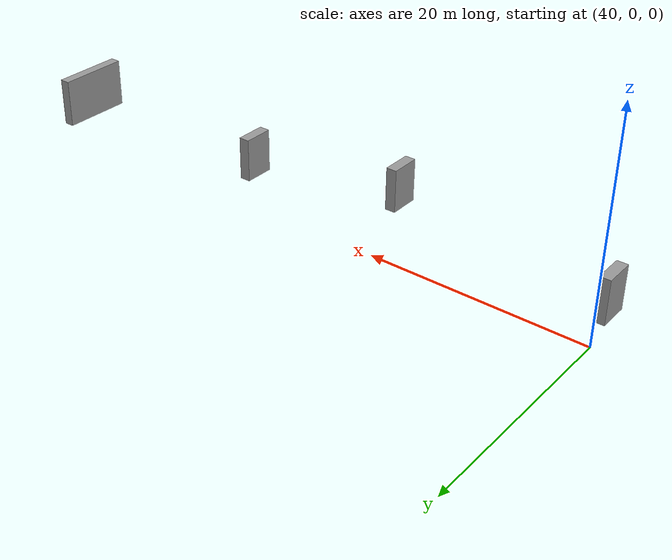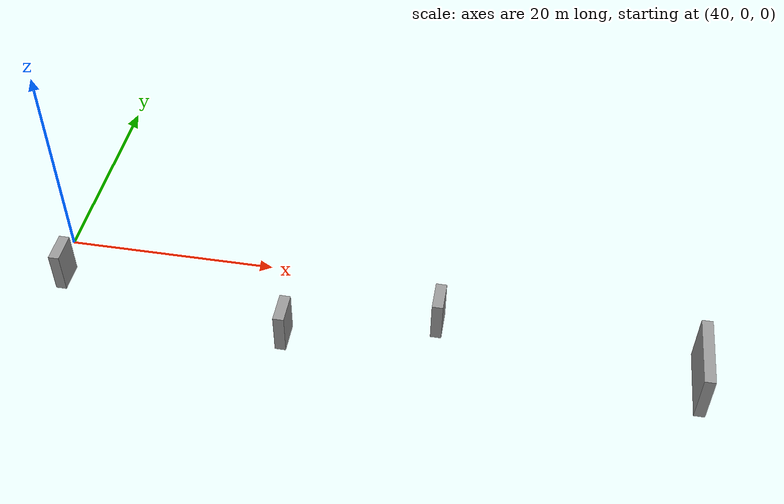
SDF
<sdf version="1.6">
 <world name="default">
  <light name="sun" type="directional">
   <pose>0 0 10 0 -0 0</pose>
   <diffuse>0.8 0.8 0.8 1</diffuse>
   <specular>0.2 0.2 0.2 1</specular>
   <attenuation>
    <range>1000</range>
    <constant>0.9</constant>
    <linear>0.01</linear>
    <quadratic>0.001</quadratic>
   </attenuation>
   <direction>-0.5 0.1 -0.9</direction>
  </light>
  <gravity>0 0 -9.8</gravity>
  <magnetic_field>6e-06 2.3e-05 -4.2e-05</magnetic_field>
  <atmosphere type="adiabatic"/>
  <physics name="default_physics" default="0" type="ode">
   <max_step_size>0.001</max_step_size>
   <real_time_factor>1</real_time_factor>
   <real_time_update_rate>1000</real_time_update_rate>
  </physics>
  <scene><ambient>0.4 0.4 0.4 1</ambient><background>0.7 0.7 0.7 1</background><shadows>1</shadows></scene>
  <spherical_coordinates>
   <surface_model>EARTH_WGS84</surface_model>
   <latitude_deg>0</latitude_deg>
   <longitude_deg>0</longitude_deg>
   <elevation>0</elevation>
   <heading_deg>0</heading_deg>
  </spherical_coordinates>
  <model name="unit_box">
   <pose>40.9607 -4.54821 2.05194 0 0.003681 -0.000857</pose>
   <link name="link">
    <inertial>
     <mass>1</mass>
     <inertia>
      <ixx>0.166667</ixx>
      <ixy>0</ixy>
      <ixz>0</ixz>
      <iyy>0.166667</iyy>
      <iyz>0</iyz>
      <izz>0.166667</izz>
     </inertia>
    </inertial>
    <collision name="collision"><geometry><box><size>1 2.83957 4.10023</size></box></geometry></collision>
    <visual name="visual">
     <geometry><box><size>1 2.83957 4.10023</size></box></geometry>
     <material>
      <script><name>Gazebo/Grey</name><uri>file://media/materials/scripts/gazebo.material</uri></script>
     </material>
    </visual>
   </link>
  </model>
  <model name="unit_box_0">
   <pose>100.37 -6.13209 0.791825 0 -2e-06 0.000118</pose>
   <link name="link">
    <inertial>
     <mass>1</mass>
     <inertia>
      <ixx>0.166667</ixx>
      <ixy>0</ixy>
      <ixz>0</ixz>
      <iyy>0.166667</iyy>
      <iyz>0</iyz>
      <izz>0.166667</izz>
     </inertia>
    </inertial>
    <collision name="collision"><geometry><box><size>1 6.94115 4.82212</size></box></geometry></collision>
    <visual name="visual">
     <geometry><box><size>1 6.94115 4.82212</size></box></geometry>
     <material>
      <script><name>Gazebo/Grey</name><uri>file://media/materials/scripts/gazebo.material</uri></script>
     </material>
    </visual>
   </link>
  </model>
  <model name="unit_box_clone">
   <pose>63.0802 -8.30386 2.05256 1e-06 0.004949 -0.000853</pose>
   <link name="link">
    <inertial>
     <mass>1</mass>
     <inertia>
      <ixx>0.166667</ixx>
      <ixy>0</ixy>
      <ixz>0</ixz>
      <iyy>0.166667</iyy>
      <iyz>0</iyz>
      <izz>0.166667</izz>
     </inertia>
    </inertial>
    <collision name="collision"><geometry><box><size>1 2.83957 4.10023</size></box></geometry></collision>
    <visual name="visual">
     <geometry><box><size>1 2.83957 4.10023</size></box></geometry>
     <material>
      <script><name>Gazebo/Grey</name><uri>file://media/materials/scripts/gazebo.material</uri></script>
     </material>
    </visual>
   </link>
  </model>
  <model name="unit_box_clone_0">
   <pose>76.6668 -4.55684 2.05256 1e-06 0.004949 -0.000853</pose>
   <link name="link">
    <inertial>
     <mass>1</mass>
     <inertia>
      <ixx>0.166667</ixx>
      <ixy>0</ixy>
      <ixz>0</ixz>
      <iyy>0.166667</iyy>
      <iyz>0</iyz>
      <izz>0.166667</izz>
     </inertia>
    </inertial>
    <collision name="collision"><geometry><box><size>1 2.83957 4.10023</size></box></geometry></collision>
    <visual name="visual">
     <geometry><box><size>1 2.83957 4.10023</size></box></geometry>
     <material>
      <script><name>Gazebo/Grey</name><uri>file://media/materials/scripts/gazebo.material</uri></script>
     </material>
    </visual>
   </link>
  </model>
 </world>
</sdf>
